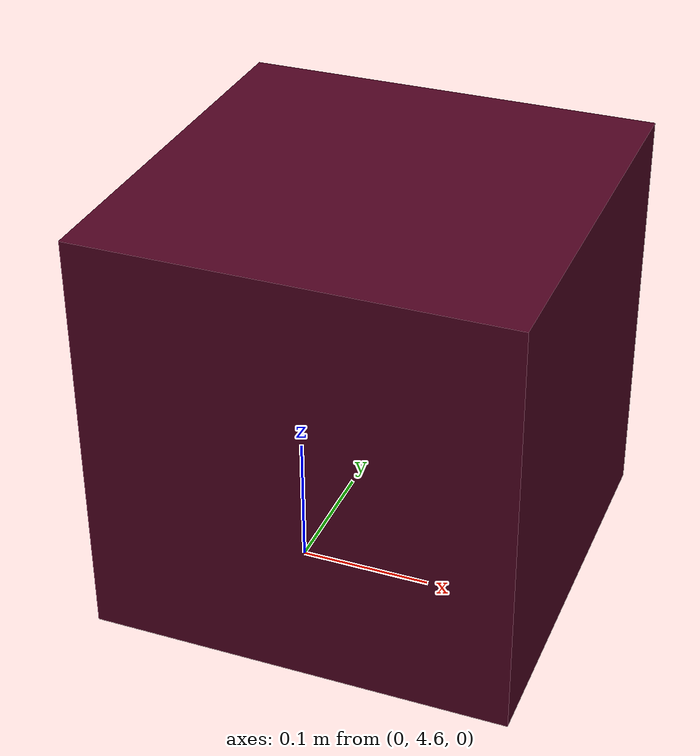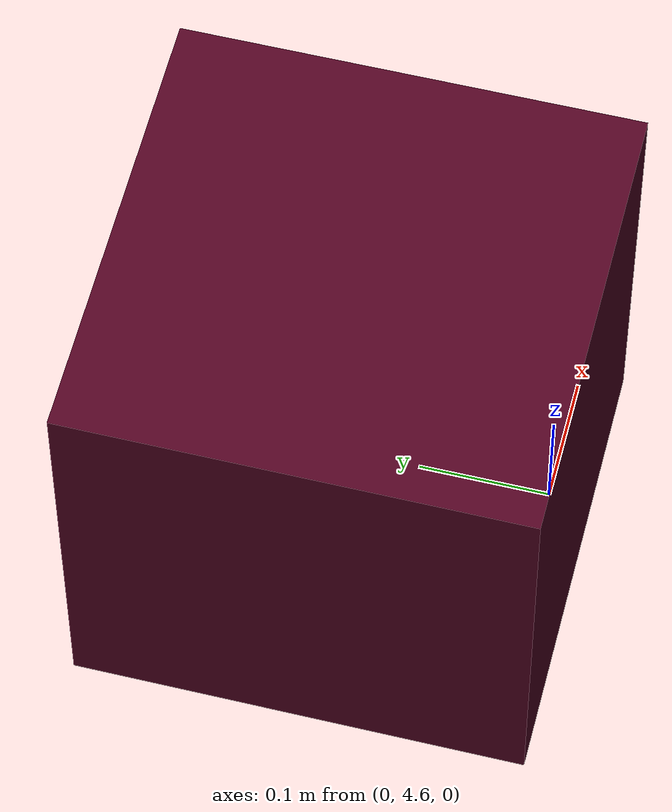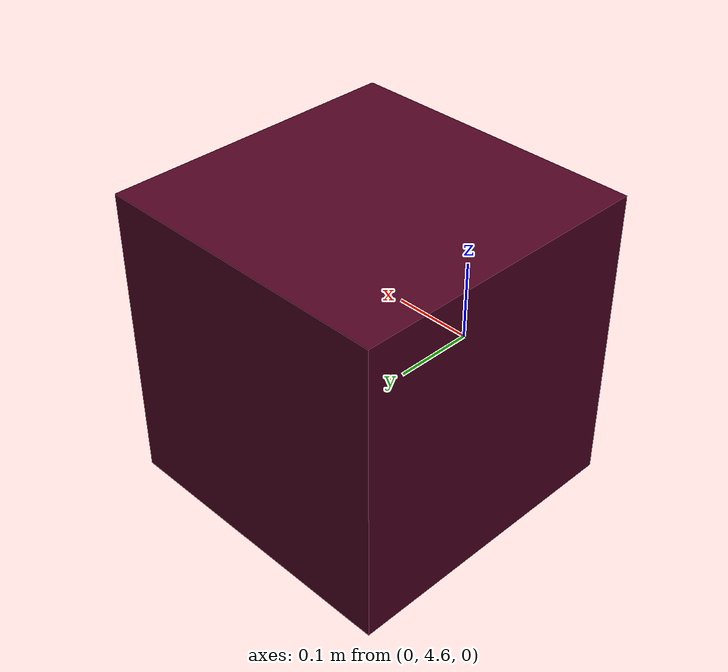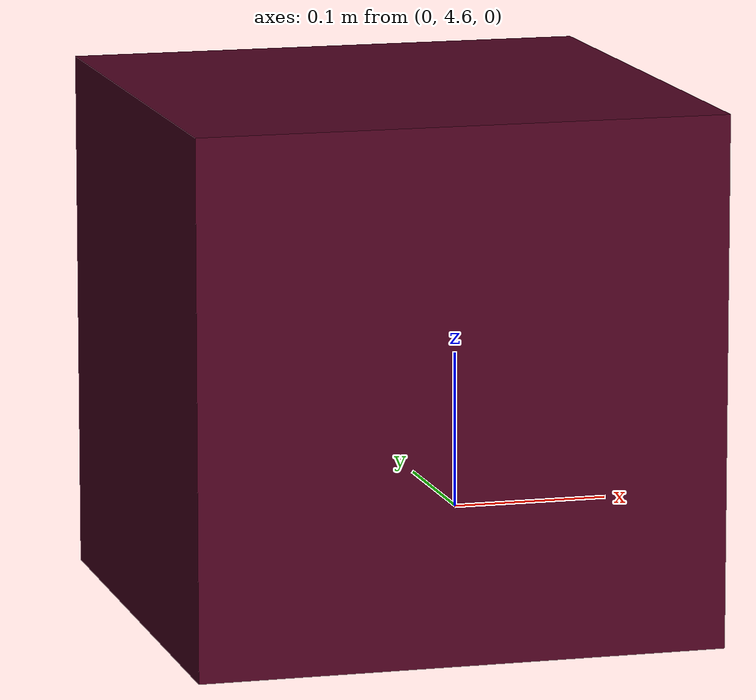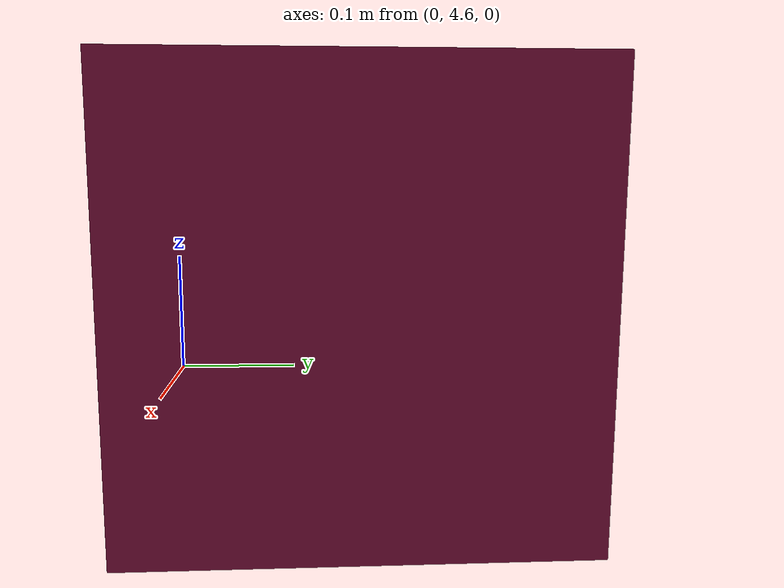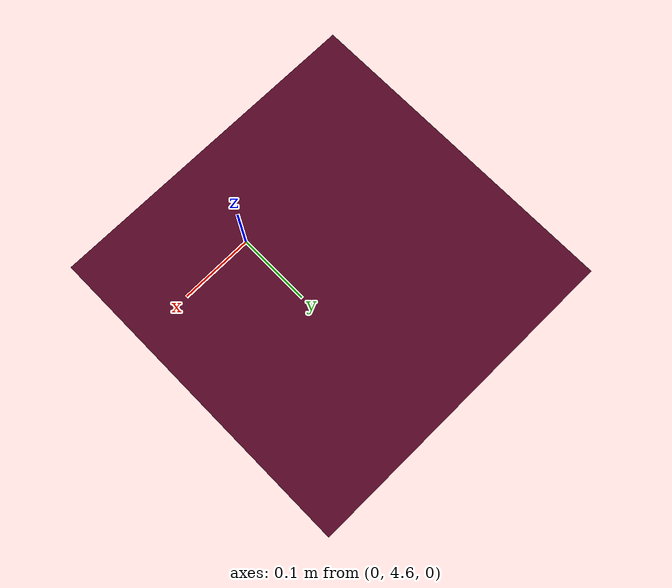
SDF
<?xml version="1.0"?>
<sdf version="1.7">
    <model name="foam_brick">
        <link name="base_link">

            <inertial>
                <pose>0 5 0.075 0 0 0 </pose>
                <mass>0.0001</mass>
                <inertia>
                    <ixx>0.0001</ixx>
                    <ixy>0</ixy>
                    <ixz>0</ixz>
                    <iyy>0.0001</iyy>
                    <iyz>0</iyz>
                    <izz>0.0001</izz>
                </inertia>
            </inertial>
            <visual name="base_link">
                <pose>0 4.7511 0.075 0 0 0</pose>
                <geometry>
                    <box>
                        <size>0.35 0.35 0.35</size>
                    </box>
                </geometry>
                <material>
                    <diffuse>0.31 0.01 0.13 1.0</diffuse>
                </material>
            </visual>
            <collision name="box_collision">
                <pose>0 0 0.125 0 0 0</pose>
                <surface>
                    <friction>
                        <ode>
                            <mu>0.9</mu>
                            <mu2>0.5</mu2>
                        </ode>
                    </friction>
                </surface>
                <geometry>
                    <box>
                        <size>0.35 0.35 0.35</size>
                    </box>
                </geometry>
            </collision>
        </link>
    </model>
</sdf>
